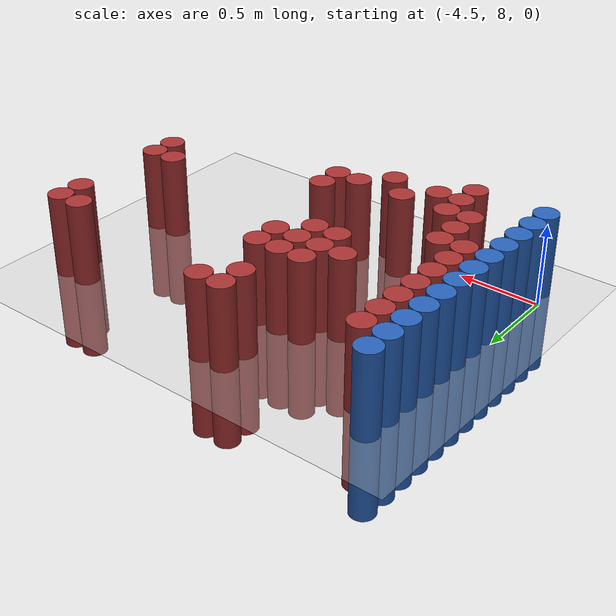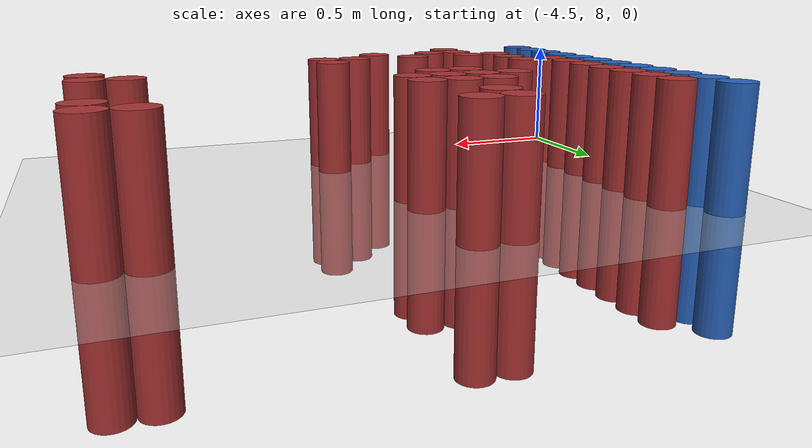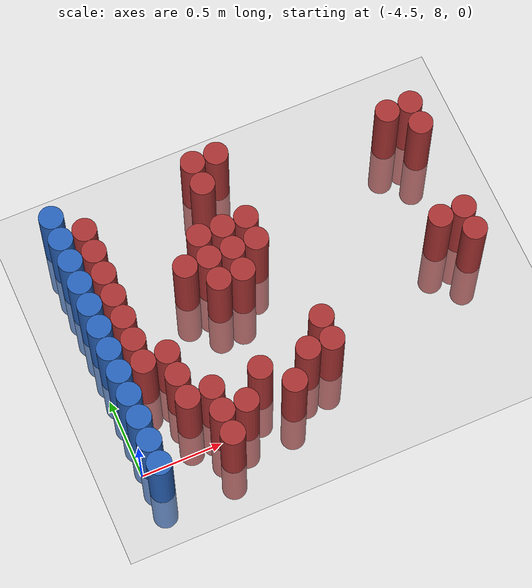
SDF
<sdf version="1.6">
 <world name="default">
  <model name="ground_plane">
   <static>1</static>
   <link name="link">
    <collision name="collision">
     <geometry><plane><normal>0 0 1</normal><size>100 100</size></plane></geometry>
     <surface><friction><ode><mu>100</mu><mu2>50</mu2></ode></friction></surface>
    </collision>
    <visual name="visual">
     <cast_shadows>0</cast_shadows>
     <geometry><plane><normal>0 0 1</normal><size>100 100</size></plane></geometry>
     <material>
      <script><uri>file://media/materials/scripts/gazebo.material</uri><name>Gazebo/Grey</name></script>
     </material>
    </visual>
   </link>
  </model>
  <model name="unit_cylinder_114">
   <static>1</static>
   <pose>-4.425000 7.875000 0.000000 0.000000 0.000000 0.000000</pose>
   <link name="link">
    <inertial>
     <mass>1</mass>
     <inertia><ixx>0.145833</ixx><ixy>0</ixy><ixz>0</ixz><iyy>0.145833</iyy><iyz>0</iyz><izz>0.125</izz></inertia>
    </inertial>
    <collision name="collision">
     <geometry><cylinder><radius>0.075000</radius><length>1</length></cylinder></geometry>
    </collision>
    <visual name="visual">
     <geometry><cylinder><radius>0.075000</radius><length>1</length></cylinder></geometry>
     <material>
      <ambient>0.152000 0.379000 0.720000 1</ambient>
      <diffuse>0.152000 0.379000 0.720000 1</diffuse>
     </material>
     <material>
      <script><name>Gazebo/Grey</name><uri>file://media/materials/scripts/gazebo.material</uri></script>
     </material>
    </visual>
   </link>
  </model>
  <model name="unit_cylinder_115">
   <static>1</static>
   <pose>-4.425000 8.025000 0.000000 0.000000 0.000000 0.000000</pose>
   <link name="link">
    <inertial>
     <mass>1</mass>
     <inertia><ixx>0.145833</ixx><ixy>0</ixy><ixz>0</ixz><iyy>0.145833</iyy><iyz>0</iyz><izz>0.125</izz></inertia>
    </inertial>
    <collision name="collision">
     <geometry><cylinder><radius>0.075000</radius><length>1</length></cylinder></geometry>
    </collision>
    <visual name="visual">
     <geometry><cylinder><radius>0.075000</radius><length>1</length></cylinder></geometry>
     <material>
      <ambient>0.152000 0.379000 0.720000 1</ambient>
      <diffuse>0.152000 0.379000 0.720000 1</diffuse>
     </material>
     <material>
      <script><name>Gazebo/Grey</name><uri>file://media/materials/scripts/gazebo.material</uri></script>
     </material>
    </visual>
   </link>
  </model>
  <model name="unit_cylinder_116">
   <static>1</static>
   <pose>-4.425000 8.175000 0.000000 0.000000 0.000000 0.000000</pose>
   <link name="link">
    <inertial>
     <mass>1</mass>
     <inertia><ixx>0.145833</ixx><ixy>0</ixy><ixz>0</ixz><iyy>0.145833</iyy><iyz>0</iyz><izz>0.125</izz></inertia>
    </inertial>
    <collision name="collision">
     <geometry><cylinder><radius>0.075000</radius><length>1</length></cylinder></geometry>
    </collision>
    <visual name="visual">
     <geometry><cylinder><radius>0.075000</radius><length>1</length></cylinder></geometry>
     <material>
      <ambient>0.152000 0.379000 0.720000 1</ambient>
      <diffuse>0.152000 0.379000 0.720000 1</diffuse>
     </material>
     <material>
      <script><name>Gazebo/Grey</name><uri>file://media/materials/scripts/gazebo.material</uri></script>
     </material>
    </visual>
   </link>
  </model>
  <model name="unit_cylinder_117">
   <static>1</static>
   <pose>-4.425000 8.325000 0.000000 0.000000 0.000000 0.000000</pose>
   <link name="link">
    <inertial>
     <mass>1</mass>
     <inertia><ixx>0.145833</ixx><ixy>0</ixy><ixz>0</ixz><iyy>0.145833</iyy><iyz>0</iyz><izz>0.125</izz></inertia>
    </inertial>
    <collision name="collision">
     <geometry><cylinder><radius>0.075000</radius><length>1</length></cylinder></geometry>
    </collision>
    <visual name="visual">
     <geometry><cylinder><radius>0.075000</radius><length>1</length></cylinder></geometry>
     <material>
      <ambient>0.152000 0.379000 0.720000 1</ambient>
      <diffuse>0.152000 0.379000 0.720000 1</diffuse>
     </material>
     <material>
      <script><name>Gazebo/Grey</name><uri>file://media/materials/scripts/gazebo.material</uri></script>
     </material>
    </visual>
   </link>
  </model>
  <model name="unit_cylinder_118">
   <static>1</static>
   <pose>-4.425000 8.475000 0.000000 0.000000 0.000000 0.000000</pose>
   <link name="link">
    <inertial>
     <mass>1</mass>
     <inertia><ixx>0.145833</ixx><ixy>0</ixy><ixz>0</ixz><iyy>0.145833</iyy><iyz>0</iyz><izz>0.125</izz></inertia>
    </inertial>
    <collision name="collision">
     <geometry><cylinder><radius>0.075000</radius><length>1</length></cylinder></geometry>
    </collision>
    <visual name="visual">
     <geometry><cylinder><radius>0.075000</radius><length>1</length></cylinder></geometry>
     <material>
      <ambient>0.152000 0.379000 0.720000 1</ambient>
      <diffuse>0.152000 0.379000 0.720000 1</diffuse>
     </material>
     <material>
      <script><name>Gazebo/Grey</name><uri>file://media/materials/scripts/gazebo.material</uri></script>
     </material>
    </visual>
   </link>
  </model>
  <model name="unit_cylinder_119">
   <static>1</static>
   <pose>-4.425000 8.625000 0.000000 0.000000 0.000000 0.000000</pose>
   <link name="link">
    <inertial>
     <mass>1</mass>
     <inertia><ixx>0.145833</ixx><ixy>0</ixy><ixz>0</ixz><iyy>0.145833</iyy><iyz>0</iyz><izz>0.125</izz></inertia>
    </inertial>
    <collision name="collision">
     <geometry><cylinder><radius>0.075000</radius><length>1</length></cylinder></geometry>
    </collision>
    <visual name="visual">
     <geometry><cylinder><radius>0.075000</radius><length>1</length></cylinder></geometry>
     <material>
      <ambient>0.152000 0.379000 0.720000 1</ambient>
      <diffuse>0.152000 0.379000 0.720000 1</diffuse>
     </material>
     <material>
      <script><name>Gazebo/Grey</name><uri>file://media/materials/scripts/gazebo.material</uri></script>
     </material>
    </visual>
   </link>
  </model>
  <model name="unit_cylinder_120">
   <static>1</static>
   <pose>-4.425000 8.775000 0.000000 0.000000 0.000000 0.000000</pose>
   <link name="link">
    <inertial>
     <mass>1</mass>
     <inertia><ixx>0.145833</ixx><ixy>0</ixy><ixz>0</ixz><iyy>0.145833</iyy><iyz>0</iyz><izz>0.125</izz></inertia>
    </inertial>
    <collision name="collision">
     <geometry><cylinder><radius>0.075000</radius><length>1</length></cylinder></geometry>
    </collision>
    <visual name="visual">
     <geometry><cylinder><radius>0.075000</radius><length>1</length></cylinder></geometry>
     <material>
      <ambient>0.152000 0.379000 0.720000 1</ambient>
      <diffuse>0.152000 0.379000 0.720000 1</diffuse>
     </material>
     <material>
      <script><name>Gazebo/Grey</name><uri>file://media/materials/scripts/gazebo.material</uri></script>
     </material>
    </visual>
   </link>
  </model>
  <model name="unit_cylinder_121">
   <static>1</static>
   <pose>-4.425000 8.925000 0.000000 0.000000 0.000000 0.000000</pose>
   <link name="link">
    <inertial>
     <mass>1</mass>
     <inertia><ixx>0.145833</ixx><ixy>0</ixy><ixz>0</ixz><iyy>0.145833</iyy><iyz>0</iyz><izz>0.125</izz></inertia>
    </inertial>
    <collision name="collision">
     <geometry><cylinder><radius>0.075000</radius><length>1</length></cylinder></geometry>
    </collision>
    <visual name="visual">
     <geometry><cylinder><radius>0.075000</radius><length>1</length></cylinder></geometry>
     <material>
      <ambient>0.152000 0.379000 0.720000 1</ambient>
      <diffuse>0.152000 0.379000 0.720000 1</diffuse>
     </material>
     <material>
      <script><name>Gazebo/Grey</name><uri>file://media/materials/scripts/gazebo.material</uri></script>
     </material>
    </visual>
   </link>
  </model>
  <model name="unit_cylinder_122">
   <static>1</static>
   <pose>-4.425000 9.075000 0.000000 0.000000 0.000000 0.000000</pose>
   <link name="link">
    <inertial>
     <mass>1</mass>
     <inertia><ixx>0.145833</ixx><ixy>0</ixy><ixz>0</ixz><iyy>0.145833</iyy><iyz>0</iyz><izz>0.125</izz></inertia>
    </inertial>
    <collision name="collision">
     <geometry><cylinder><radius>0.075000</radius><length>1</length></cylinder></geometry>
    </collision>
    <visual name="visual">
     <geometry><cylinder><radius>0.075000</radius><length>1</length></cylinder></geometry>
     <material>
      <ambient>0.152000 0.379000 0.720000 1</ambient>
      <diffuse>0.152000 0.379000 0.720000 1</diffuse>
     </material>
     <material>
      <script><name>Gazebo/Grey</name><uri>file://media/materials/scripts/gazebo.material</uri></script>
     </material>
    </visual>
   </link>
  </model>
  <model name="unit_cylinder_123">
   <static>1</static>
   <pose>-4.425000 9.225000 0.000000 0.000000 0.000000 0.000000</pose>
   <link name="link">
    <inertial>
     <mass>1</mass>
     <inertia><ixx>0.145833</ixx><ixy>0</ixy><ixz>0</ixz><iyy>0.145833</iyy><iyz>0</iyz><izz>0.125</izz></inertia>
    </inertial>
    <collision name="collision">
     <geometry><cylinder><radius>0.075000</radius><length>1</length></cylinder></geometry>
    </collision>
    <visual name="visual">
     <geometry><cylinder><radius>0.075000</radius><length>1</length></cylinder></geometry>
     <material>
      <ambient>0.152000 0.379000 0.720000 1</ambient>
      <diffuse>0.152000 0.379000 0.720000 1</diffuse>
     </material>
     <material>
      <script><name>Gazebo/Grey</name><uri>file://media/materials/scripts/gazebo.material</uri></script>
     </material>
    </visual>
   </link>
  </model>
  <model name="unit_cylinder_124">
   <static>1</static>
   <pose>-4.425000 9.375000 0.000000 0.000000 0.000000 0.000000</pose>
   <link name="link">
    <inertial>
     <mass>1</mass>
     <inertia><ixx>0.145833</ixx><ixy>0</ixy><ixz>0</ixz><iyy>0.145833</iyy><iyz>0</iyz><izz>0.125</izz></inertia>
    </inertial>
    <collision name="collision">
     <geometry><cylinder><radius>0.075000</radius><length>1</length></cylinder></geometry>
    </collision>
    <visual name="visual">
     <geometry><cylinder><radius>0.075000</radius><length>1</length></cylinder></geometry>
     <material>
      <ambient>0.152000 0.379000 0.720000 1</ambient>
      <diffuse>0.152000 0.379000 0.720000 1</diffuse>
     </material>
     <material>
      <script><name>Gazebo/Grey</name><uri>file://media/materials/scripts/gazebo.material</uri></script>
     </material>
    </visual>
   </link>
  </model>
  <model name="unit_cylinder_125">
   <static>1</static>
   <pose>-4.425000 9.525000 0.000000 0.000000 0.000000 0.000000</pose>
   <link name="link">
    <inertial>
     <mass>1</mass>
     <inertia><ixx>0.145833</ixx><ixy>0</ixy><ixz>0</ixz><iyy>0.145833</iyy><iyz>0</iyz><izz>0.125</izz></inertia>
    </inertial>
    <collision name="collision">
     <geometry><cylinder><radius>0.075000</radius><length>1</length></cylinder></geometry>
    </collision>
    <visual name="visual">
     <geometry><cylinder><radius>0.075000</radius><length>1</length></cylinder></geometry>
     <material>
      <ambient>0.152000 0.379000 0.720000 1</ambient>
      <diffuse>0.152000 0.379000 0.720000 1</diffuse>
     </material>
     <material>
      <script><name>Gazebo/Grey</name><uri>file://media/materials/scripts/gazebo.material</uri></script>
     </material>
    </visual>
   </link>
  </model>
  <model name="unit_cylinder_134">
   <static>1</static>
   <pose>-4.275000 8.475000 0.000000 0.000000 0.000000 0.000000</pose>
   <link name="link">
    <inertial>
     <mass>1</mass>
     <inertia><ixx>0.145833</ixx><ixy>0</ixy><ixz>0</ixz><iyy>0.145833</iyy><iyz>0</iyz><izz>0.125</izz></inertia>
    </inertial>
    <collision name="collision">
     <geometry><cylinder><radius>0.075000</radius><length>1</length></cylinder></geometry>
    </collision>
    <visual name="visual">
     <geometry><cylinder><radius>0.075000</radius><length>1</length></cylinder></geometry>
     <material>
      <ambient>0.648000 0.192000 0.192000 1</ambient>
      <diffuse>0.648000 0.192000 0.192000 1</diffuse>
     </material>
     <material>
      <script><name>Gazebo/Grey</name><uri>file://media/materials/scripts/gazebo.material</uri></script>
     </material>
    </visual>
   </link>
  </model>
  <model name="unit_cylinder_135">
   <static>1</static>
   <pose>-4.275000 8.625000 0.000000 0.000000 0.000000 0.000000</pose>
   <link name="link">
    <inertial>
     <mass>1</mass>
     <inertia><ixx>0.145833</ixx><ixy>0</ixy><ixz>0</ixz><iyy>0.145833</iyy><iyz>0</iyz><izz>0.125</izz></inertia>
    </inertial>
    <collision name="collision">
     <geometry><cylinder><radius>0.075000</radius><length>1</length></cylinder></geometry>
    </collision>
    <visual name="visual">
     <geometry><cylinder><radius>0.075000</radius><length>1</length></cylinder></geometry>
     <material>
      <ambient>0.648000 0.192000 0.192000 1</ambient>
      <diffuse>0.648000 0.192000 0.192000 1</diffuse>
     </material>
     <material>
      <script><name>Gazebo/Grey</name><uri>file://media/materials/scripts/gazebo.material</uri></script>
     </material>
    </visual>
   </link>
  </model>
  <model name="unit_cylinder_136">
   <static>1</static>
   <pose>-4.275000 8.775000 0.000000 0.000000 0.000000 0.000000</pose>
   <link name="link">
    <inertial>
     <mass>1</mass>
     <inertia><ixx>0.145833</ixx><ixy>0</ixy><ixz>0</ixz><iyy>0.145833</iyy><iyz>0</iyz><izz>0.125</izz></inertia>
    </inertial>
    <collision name="collision">
     <geometry><cylinder><radius>0.075000</radius><length>1</length></cylinder></geometry>
    </collision>
    <visual name="visual">
     <geometry><cylinder><radius>0.075000</radius><length>1</length></cylinder></geometry>
     <material>
      <ambient>0.648000 0.192000 0.192000 1</ambient>
      <diffuse>0.648000 0.192000 0.192000 1</diffuse>
     </material>
     <material>
      <script><name>Gazebo/Grey</name><uri>file://media/materials/scripts/gazebo.material</uri></script>
     </material>
    </visual>
   </link>
  </model>
  <model name="unit_cylinder_137">
   <static>1</static>
   <pose>-4.275000 8.925000 0.000000 0.000000 0.000000 0.000000</pose>
   <link name="link">
    <inertial>
     <mass>1</mass>
     <inertia><ixx>0.145833</ixx><ixy>0</ixy><ixz>0</ixz><iyy>0.145833</iyy><iyz>0</iyz><izz>0.125</izz></inertia>
    </inertial>
    <collision name="collision">
     <geometry><cylinder><radius>0.075000</radius><length>1</length></cylinder></geometry>
    </collision>
    <visual name="visual">
     <geometry><cylinder><radius>0.075000</radius><length>1</length></cylinder></geometry>
     <material>
      <ambient>0.648000 0.192000 0.192000 1</ambient>
      <diffuse>0.648000 0.192000 0.192000 1</diffuse>
     </material>
     <material>
      <script><name>Gazebo/Grey</name><uri>file://media/materials/scripts/gazebo.material</uri></script>
     </material>
    </visual>
   </link>
  </model>
  <model name="unit_cylinder_138">
   <static>1</static>
   <pose>-4.275000 9.075000 0.000000 0.000000 0.000000 0.000000</pose>
   <link name="link">
    <inertial>
     <mass>1</mass>
     <inertia><ixx>0.145833</ixx><ixy>0</ixy><ixz>0</ixz><iyy>0.145833</iyy><iyz>0</iyz><izz>0.125</izz></inertia>
    </inertial>
    <collision name="collision">
     <geometry><cylinder><radius>0.075000</radius><length>1</length></cylinder></geometry>
    </collision>
    <visual name="visual">
     <geometry><cylinder><radius>0.075000</radius><length>1</length></cylinder></geometry>
     <material>
      <ambient>0.648000 0.192000 0.192000 1</ambient>
      <diffuse>0.648000 0.192000 0.192000 1</diffuse>
     </material>
     <material>
      <script><name>Gazebo/Grey</name><uri>file://media/materials/scripts/gazebo.material</uri></script>
     </material>
    </visual>
   </link>
  </model>
  <model name="unit_cylinder_139">
   <static>1</static>
   <pose>-4.275000 9.225000 0.000000 0.000000 0.000000 0.000000</pose>
   <link name="link">
    <inertial>
     <mass>1</mass>
     <inertia><ixx>0.145833</ixx><ixy>0</ixy><ixz>0</ixz><iyy>0.145833</iyy><iyz>0</iyz><izz>0.125</izz></inertia>
    </inertial>
    <collision name="collision">
     <geometry><cylinder><radius>0.075000</radius><length>1</length></cylinder></geometry>
    </collision>
    <visual name="visual">
     <geometry><cylinder><radius>0.075000</radius><length>1</length></cylinder></geometry>
     <material>
      <ambient>0.648000 0.192000 0.192000 1</ambient>
      <diffuse>0.648000 0.192000 0.192000 1</diffuse>
     </material>
     <material>
      <script><name>Gazebo/Grey</name><uri>file://media/materials/scripts/gazebo.material</uri></script>
     </material>
    </visual>
   </link>
  </model>
  <model name="unit_cylinder_140">
   <static>1</static>
   <pose>-4.275000 9.375000 0.000000 0.000000 0.000000 0.000000</pose>
   <link name="link">
    <inertial>
     <mass>1</mass>
     <inertia><ixx>0.145833</ixx><ixy>0</ixy><ixz>0</ixz><iyy>0.145833</iyy><iyz>0</iyz><izz>0.125</izz></inertia>
    </inertial>
    <collision name="collision">
     <geometry><cylinder><radius>0.075000</radius><length>1</length></cylinder></geometry>
    </collision>
    <visual name="visual">
     <geometry><cylinder><radius>0.075000</radius><length>1</length></cylinder></geometry>
     <material>
      <ambient>0.648000 0.192000 0.192000 1</ambient>
      <diffuse>0.648000 0.192000 0.192000 1</diffuse>
     </material>
     <material>
      <script><name>Gazebo/Grey</name><uri>file://media/materials/scripts/gazebo.material</uri></script>
     </material>
    </visual>
   </link>
  </model>
  <model name="unit_cylinder_148">
   <static>1</static>
   <pose>-4.125000 8.175000 0.000000 0.000000 0.000000 0.000000</pose>
   <link name="link">
    <inertial>
     <mass>1</mass>
     <inertia><ixx>0.145833</ixx><ixy>0</ixy><ixz>0</ixz><iyy>0.145833</iyy><iyz>0</iyz><izz>0.125</izz></inertia>
    </inertial>
    <collision name="collision">
     <geometry><cylinder><radius>0.075000</radius><length>1</length></cylinder></geometry>
    </collision>
    <visual name="visual">
     <geometry><cylinder><radius>0.075000</radius><length>1</length></cylinder></geometry>
     <material>
      <ambient>0.648000 0.192000 0.192000 1</ambient>
      <diffuse>0.648000 0.192000 0.192000 1</diffuse>
     </material>
     <material>
      <script><name>Gazebo/Grey</name><uri>file://media/materials/scripts/gazebo.material</uri></script>
     </material>
    </visual>
   </link>
  </model>
  <model name="unit_cylinder_149">
   <static>1</static>
   <pose>-4.125000 8.325000 0.000000 0.000000 0.000000 0.000000</pose>
   <link name="link">
    <inertial>
     <mass>1</mass>
     <inertia><ixx>0.145833</ixx><ixy>0</ixy><ixz>0</ixz><iyy>0.145833</iyy><iyz>0</iyz><izz>0.125</izz></inertia>
    </inertial>
    <collision name="collision">
     <geometry><cylinder><radius>0.075000</radius><length>1</length></cylinder></geometry>
    </collision>
    <visual name="visual">
     <geometry><cylinder><radius>0.075000</radius><length>1</length></cylinder></geometry>
     <material>
      <ambient>0.648000 0.192000 0.192000 1</ambient>
      <diffuse>0.648000 0.192000 0.192000 1</diffuse>
     </material>
     <material>
      <script><name>Gazebo/Grey</name><uri>file://media/materials/scripts/gazebo.material</uri></script>
     </material>
    </visual>
   </link>
  </model>
  <model name="unit_cylinder_150">
   <static>1</static>
   <pose>-4.125000 8.475000 0.000000 0.000000 0.000000 0.000000</pose>
   <link name="link">
    <inertial>
     <mass>1</mass>
     <inertia><ixx>0.145833</ixx><ixy>0</ixy><ixz>0</ixz><iyy>0.145833</iyy><iyz>0</iyz><izz>0.125</izz></inertia>
    </inertial>
    <collision name="collision">
     <geometry><cylinder><radius>0.075000</radius><length>1</length></cylinder></geometry>
    </collision>
    <visual name="visual">
     <geometry><cylinder><radius>0.075000</radius><length>1</length></cylinder></geometry>
     <material>
      <ambient>0.648000 0.192000 0.192000 1</ambient>
      <diffuse>0.648000 0.192000 0.192000 1</diffuse>
     </material>
     <material>
      <script><name>Gazebo/Grey</name><uri>file://media/materials/scripts/gazebo.material</uri></script>
     </material>
    </visual>
   </link>
  </model>
  <model name="unit_cylinder_160">
   <static>1</static>
   <pose>-3.975000 7.875000 0.000000 0.000000 0.000000 0.000000</pose>
   <link name="link">
    <inertial>
     <mass>1</mass>
     <inertia><ixx>0.145833</ixx><ixy>0</ixy><ixz>0</ixz><iyy>0.145833</iyy><iyz>0</iyz><izz>0.125</izz></inertia>
    </inertial>
    <collision name="collision">
     <geometry><cylinder><radius>0.075000</radius><length>1</length></cylinder></geometry>
    </collision>
    <visual name="visual">
     <geometry><cylinder><radius>0.075000</radius><length>1</length></cylinder></geometry>
     <material>
      <ambient>0.648000 0.192000 0.192000 1</ambient>
      <diffuse>0.648000 0.192000 0.192000 1</diffuse>
     </material>
     <material>
      <script><name>Gazebo/Grey</name><uri>file://media/materials/scripts/gazebo.material</uri></script>
     </material>
    </visual>
   </link>
  </model>
  <model name="unit_cylinder_161">
   <static>1</static>
   <pose>-3.975000 8.025000 0.000000 0.000000 0.000000 0.000000</pose>
   <link name="link">
    <inertial>
     <mass>1</mass>
     <inertia><ixx>0.145833</ixx><ixy>0</ixy><ixz>0</ixz><iyy>0.145833</iyy><iyz>0</iyz><izz>0.125</izz></inertia>
    </inertial>
    <collision name="collision">
     <geometry><cylinder><radius>0.075000</radius><length>1</length></cylinder></geometry>
    </collision>
    <visual name="visual">
     <geometry><cylinder><radius>0.075000</radius><length>1</length></cylinder></geometry>
     <material>
      <ambient>0.648000 0.192000 0.192000 1</ambient>
      <diffuse>0.648000 0.192000 0.192000 1</diffuse>
     </material>
     <material>
      <script><name>Gazebo/Grey</name><uri>file://media/materials/scripts/gazebo.material</uri></script>
     </material>
    </visual>
   </link>
  </model>
  <model name="unit_cylinder_162">
   <static>1</static>
   <pose>-3.975000 8.175000 0.000000 0.000000 0.000000 0.000000</pose>
   <link name="link">
    <inertial>
     <mass>1</mass>
     <inertia><ixx>0.145833</ixx><ixy>0</ixy><ixz>0</ixz><iyy>0.145833</iyy><iyz>0</iyz><izz>0.125</izz></inertia>
    </inertial>
    <collision name="collision">
     <geometry><cylinder><radius>0.075000</radius><length>1</length></cylinder></geometry>
    </collision>
    <visual name="visual">
     <geometry><cylinder><radius>0.075000</radius><length>1</length></cylinder></geometry>
     <material>
      <ambient>0.648000 0.192000 0.192000 1</ambient>
      <diffuse>0.648000 0.192000 0.192000 1</diffuse>
     </material>
     <material>
      <script><name>Gazebo/Grey</name><uri>file://media/materials/scripts/gazebo.material</uri></script>
     </material>
    </visual>
   </link>
  </model>
  <model name="unit_cylinder_169">
   <static>1</static>
   <pose>-3.825000 8.025000 0.000000 0.000000 0.000000 0.000000</pose>
   <link name="link">
    <inertial>
     <mass>1</mass>
     <inertia><ixx>0.145833</ixx><ixy>0</ixy><ixz>0</ixz><iyy>0.145833</iyy><iyz>0</iyz><izz>0.125</izz></inertia>
    </inertial>
    <collision name="collision">
     <geometry><cylinder><radius>0.075000</radius><length>1</length></cylinder></geometry>
    </collision>
    <visual name="visual">
     <geometry><cylinder><radius>0.075000</radius><length>1</length></cylinder></geometry>
     <material>
      <ambient>0.648000 0.192000 0.192000 1</ambient>
      <diffuse>0.648000 0.192000 0.192000 1</diffuse>
     </material>
     <material>
      <script><name>Gazebo/Grey</name><uri>file://media/materials/scripts/gazebo.material</uri></script>
     </material>
    </visual>
   </link>
  </model>
  <model name="unit_cylinder_170">
   <static>1</static>
   <pose>-3.825000 8.925000 0.000000 0.000000 0.000000 0.000000</pose>
   <link name="link">
    <inertial>
     <mass>1</mass>
     <inertia><ixx>0.145833</ixx><ixy>0</ixy><ixz>0</ixz><iyy>0.145833</iyy><iyz>0</iyz><izz>0.125</izz></inertia>
    </inertial>
    <collision name="collision">
     <geometry><cylinder><radius>0.075000</radius><length>1</length></cylinder></geometry>
    </collision>
    <visual name="visual">
     <geometry><cylinder><radius>0.075000</radius><length>1</length></cylinder></geometry>
     <material>
      <ambient>0.648000 0.192000 0.192000 1</ambient>
      <diffuse>0.648000 0.192000 0.192000 1</diffuse>
     </material>
     <material>
      <script><name>Gazebo/Grey</name><uri>file://media/materials/scripts/gazebo.material</uri></script>
     </material>
    </visual>
   </link>
  </model>
  <model name="unit_cylinder_172">
   <static>1</static>
   <pose>-3.675000 8.175000 0.000000 0.000000 0.000000 0.000000</pose>
   <link name="link">
    <inertial>
     <mass>1</mass>
     <inertia><ixx>0.145833</ixx><ixy>0</ixy><ixz>0</ixz><iyy>0.145833</iyy><iyz>0</iyz><izz>0.125</izz></inertia>
    </inertial>
    <collision name="collision">
     <geometry><cylinder><radius>0.075000</radius><length>1</length></cylinder></geometry>
    </collision>
    <visual name="visual">
     <geometry><cylinder><radius>0.075000</radius><length>1</length></cylinder></geometry>
     <material>
      <ambient>0.648000 0.192000 0.192000 1</ambient>
      <diffuse>0.648000 0.192000 0.192000 1</diffuse>
     </material>
     <material>
      <script><name>Gazebo/Grey</name><uri>file://media/materials/scripts/gazebo.material</uri></script>
     </material>
    </visual>
   </link>
  </model>
  <model name="unit_cylinder_173">
   <static>1</static>
   <pose>-3.675000 8.775000 0.000000 0.000000 0.000000 0.000000</pose>
   <link name="link">
    <inertial>
     <mass>1</mass>
     <inertia><ixx>0.145833</ixx><ixy>0</ixy><ixz>0</ixz><iyy>0.145833</iyy><iyz>0</iyz><izz>0.125</izz></inertia>
    </inertial>
    <collision name="collision">
     <geometry><cylinder><radius>0.075000</radius><length>1</length></cylinder></geometry>
    </collision>
    <visual name="visual">
     <geometry><cylinder><radius>0.075000</radius><length>1</length></cylinder></geometry>
     <material>
      <ambient>0.648000 0.192000 0.192000 1</ambient>
      <diffuse>0.648000 0.192000 0.192000 1</diffuse>
     </material>
     <material>
      <script><name>Gazebo/Grey</name><uri>file://media/materials/scripts/gazebo.material</uri></script>
     </material>
    </visual>
   </link>
  </model>
  <model name="unit_cylinder_174">
   <static>1</static>
   <pose>-3.675000 8.925000 0.000000 0.000000 0.000000 0.000000</pose>
   <link name="link">
    <inertial>
     <mass>1</mass>
     <inertia><ixx>0.145833</ixx><ixy>0</ixy><ixz>0</ixz><iyy>0.145833</iyy><iyz>0</iyz><izz>0.125</izz></inertia>
    </inertial>
    <collision name="collision">
     <geometry><cylinder><radius>0.075000</radius><length>1</length></cylinder></geometry>
    </collision>
    <visual name="visual">
     <geometry><cylinder><radius>0.075000</radius><length>1</length></cylinder></geometry>
     <material>
      <ambient>0.648000 0.192000 0.192000 1</ambient>
      <diffuse>0.648000 0.192000 0.192000 1</diffuse>
     </material>
     <material>
      <script><name>Gazebo/Grey</name><uri>file://media/materials/scripts/gazebo.material</uri></script>
     </material>
    </visual>
   </link>
  </model>
  <model name="unit_cylinder_175">
   <static>1</static>
   <pose>-3.675000 9.075000 0.000000 0.000000 0.000000 0.000000</pose>
   <link name="link">
    <inertial>
     <mass>1</mass>
     <inertia><ixx>0.145833</ixx><ixy>0</ixy><ixz>0</ixz><iyy>0.145833</iyy><iyz>0</iyz><izz>0.125</izz></inertia>
    </inertial>
    <collision name="collision">
     <geometry><cylinder><radius>0.075000</radius><length>1</length></cylinder></geometry>
    </collision>
    <visual name="visual">
     <geometry><cylinder><radius>0.075000</radius><length>1</length></cylinder></geometry>
     <material>
      <ambient>0.648000 0.192000 0.192000 1</ambient>
      <diffuse>0.648000 0.192000 0.192000 1</diffuse>
     </material>
     <material>
      <script><name>Gazebo/Grey</name><uri>file://media/materials/scripts/gazebo.material</uri></script>
     </material>
    </visual>
   </link>
  </model>
  <model name="unit_cylinder_176">
   <static>1</static>
   <pose>-3.525000 8.025000 0.000000 0.000000 0.000000 0.000000</pose>
   <link name="link">
    <inertial>
     <mass>1</mass>
     <inertia><ixx>0.145833</ixx><ixy>0</ixy><ixz>0</ixz><iyy>0.145833</iyy><iyz>0</iyz><izz>0.125</izz></inertia>
    </inertial>
    <collision name="collision">
     <geometry><cylinder><radius>0.075000</radius><length>1</length></cylinder></geometry>
    </collision>
    <visual name="visual">
     <geometry><cylinder><radius>0.075000</radius><length>1</length></cylinder></geometry>
     <material>
      <ambient>0.648000 0.192000 0.192000 1</ambient>
      <diffuse>0.648000 0.192000 0.192000 1</diffuse>
     </material>
     <material>
      <script><name>Gazebo/Grey</name><uri>file://media/materials/scripts/gazebo.material</uri></script>
     </material>
    </visual>
   </link>
  </model>
  <model name="unit_cylinder_177">
   <static>1</static>
   <pose>-3.525000 8.775000 0.000000 0.000000 0.000000 0.000000</pose>
   <link name="link">
    <inertial>
     <mass>1</mass>
     <inertia><ixx>0.145833</ixx><ixy>0</ixy><ixz>0</ixz><iyy>0.145833</iyy><iyz>0</iyz><izz>0.125</izz></inertia>
    </inertial>
    <collision name="collision">
     <geometry><cylinder><radius>0.075000</radius><length>1</length></cylinder></geometry>
    </collision>
    <visual name="visual">
     <geometry><cylinder><radius>0.075000</radius><length>1</length></cylinder></geometry>
     <material>
      <ambient>0.648000 0.192000 0.192000 1</ambient>
      <diffuse>0.648000 0.192000 0.192000 1</diffuse>
     </material>
     <material>
      <script><name>Gazebo/Grey</name><uri>file://media/materials/scripts/gazebo.material</uri></script>
     </material>
    </visual>
   </link>
  </model>
  <model name="unit_cylinder_178">
   <static>1</static>
   <pose>-3.525000 8.925000 0.000000 0.000000 0.000000 0.000000</pose>
   <link name="link">
    <inertial>
     <mass>1</mass>
     <inertia><ixx>0.145833</ixx><ixy>0</ixy><ixz>0</ixz><iyy>0.145833</iyy><iyz>0</iyz><izz>0.125</izz></inertia>
    </inertial>
    <collision name="collision">
     <geometry><cylinder><radius>0.075000</radius><length>1</length></cylinder></geometry>
    </collision>
    <visual name="visual">
     <geometry><cylinder><radius>0.075000</radius><length>1</length></cylinder></geometry>
     <material>
      <ambient>0.648000 0.192000 0.192000 1</ambient>
      <diffuse>0.648000 0.192000 0.192000 1</diffuse>
     </material>
     <material>
      <script><name>Gazebo/Grey</name><uri>file://media/materials/scripts/gazebo.material</uri></script>
     </material>
    </visual>
   </link>
  </model>
  <model name="unit_cylinder_179">
   <static>1</static>
   <pose>-3.525000 9.075000 0.000000 0.000000 0.000000 0.000000</pose>
   <link name="link">
    <inertial>
     <mass>1</mass>
     <inertia><ixx>0.145833</ixx><ixy>0</ixy><ixz>0</ixz><iyy>0.145833</iyy><iyz>0</iyz><izz>0.125</izz></inertia>
    </inertial>
    <collision name="collision">
     <geometry><cylinder><radius>0.075000</radius><length>1</length></cylinder></geometry>
    </collision>
    <visual name="visual">
     <geometry><cylinder><radius>0.075000</radius><length>1</length></cylinder></geometry>
     <material>
      <ambient>0.648000 0.192000 0.192000 1</ambient>
      <diffuse>0.648000 0.192000 0.192000 1</diffuse>
     </material>
     <material>
      <script><name>Gazebo/Grey</name><uri>file://media/materials/scripts/gazebo.material</uri></script>
     </material>
    </visual>
   </link>
  </model>
  <model name="unit_cylinder_180">
   <static>1</static>
   <pose>-3.525000 9.375000 0.000000 0.000000 0.000000 0.000000</pose>
   <link name="link">
    <inertial>
     <mass>1</mass>
     <inertia><ixx>0.145833</ixx><ixy>0</ixy><ixz>0</ixz><iyy>0.145833</iyy><iyz>0</iyz><izz>0.125</izz></inertia>
    </inertial>
    <collision name="collision">
     <geometry><cylinder><radius>0.075000</radius><length>1</length></cylinder></geometry>
    </collision>
    <visual name="visual">
     <geometry><cylinder><radius>0.075000</radius><length>1</length></cylinder></geometry>
     <material>
      <ambient>0.648000 0.192000 0.192000 1</ambient>
      <diffuse>0.648000 0.192000 0.192000 1</diffuse>
     </material>
     <material>
      <script><name>Gazebo/Grey</name><uri>file://media/materials/scripts/gazebo.material</uri></script>
     </material>
    </visual>
   </link>
  </model>
  <model name="unit_cylinder_181">
   <static>1</static>
   <pose>-3.525000 9.525000 0.000000 0.000000 0.000000 0.000000</pose>
   <link name="link">
    <inertial>
     <mass>1</mass>
     <inertia><ixx>0.145833</ixx><ixy>0</ixy><ixz>0</ixz><iyy>0.145833</iyy><iyz>0</iyz><izz>0.125</izz></inertia>
    </inertial>
    <collision name="collision">
     <geometry><cylinder><radius>0.075000</radius><length>1</length></cylinder></geometry>
    </collision>
    <visual name="visual">
     <geometry><cylinder><radius>0.075000</radius><length>1</length></cylinder></geometry>
     <material>
      <ambient>0.648000 0.192000 0.192000 1</ambient>
      <diffuse>0.648000 0.192000 0.192000 1</diffuse>
     </material>
     <material>
      <script><name>Gazebo/Grey</name><uri>file://media/materials/scripts/gazebo.material</uri></script>
     </material>
    </visual>
   </link>
  </model>
  <model name="unit_cylinder_183">
   <static>1</static>
   <pose>-3.375000 8.175000 0.000000 0.000000 0.000000 0.000000</pose>
   <link name="link">
    <inertial>
     <mass>1</mass>
     <inertia><ixx>0.145833</ixx><ixy>0</ixy><ixz>0</ixz><iyy>0.145833</iyy><iyz>0</iyz><izz>0.125</izz></inertia>
    </inertial>
    <collision name="collision">
     <geometry><cylinder><radius>0.075000</radius><length>1</length></cylinder></geometry>
    </collision>
    <visual name="visual">
     <geometry><cylinder><radius>0.075000</radius><length>1</length></cylinder></geometry>
     <material>
      <ambient>0.648000 0.192000 0.192000 1</ambient>
      <diffuse>0.648000 0.192000 0.192000 1</diffuse>
     </material>
     <material>
      <script><name>Gazebo/Grey</name><uri>file://media/materials/scripts/gazebo.material</uri></script>
     </material>
    </visual>
   </link>
  </model>
  <model name="unit_cylinder_184">
   <static>1</static>
   <pose>-3.375000 8.925000 0.000000 0.000000 0.000000 0.000000</pose>
   <link name="link">
    <inertial>
     <mass>1</mass>
     <inertia><ixx>0.145833</ixx><ixy>0</ixy><ixz>0</ixz><iyy>0.145833</iyy><iyz>0</iyz><izz>0.125</izz></inertia>
    </inertial>
    <collision name="collision">
     <geometry><cylinder><radius>0.075000</radius><length>1</length></cylinder></geometry>
    </collision>
    <visual name="visual">
     <geometry><cylinder><radius>0.075000</radius><length>1</length></cylinder></geometry>
     <material>
      <ambient>0.648000 0.192000 0.192000 1</ambient>
      <diffuse>0.648000 0.192000 0.192000 1</diffuse>
     </material>
     <material>
      <script><name>Gazebo/Grey</name><uri>file://media/materials/scripts/gazebo.material</uri></script>
     </material>
    </visual>
   </link>
  </model>
  <model name="unit_cylinder_185">
   <static>1</static>
   <pose>-3.375000 9.075000 0.000000 0.000000 0.000000 0.000000</pose>
   <link name="link">
    <inertial>
     <mass>1</mass>
     <inertia><ixx>0.145833</ixx><ixy>0</ixy><ixz>0</ixz><iyy>0.145833</iyy><iyz>0</iyz><izz>0.125</izz></inertia>
    </inertial>
    <collision name="collision">
     <geometry><cylinder><radius>0.075000</radius><length>1</length></cylinder></geometry>
    </collision>
    <visual name="visual">
     <geometry><cylinder><radius>0.075000</radius><length>1</length></cylinder></geometry>
     <material>
      <ambient>0.648000 0.192000 0.192000 1</ambient>
      <diffuse>0.648000 0.192000 0.192000 1</diffuse>
     </material>
     <material>
      <script><name>Gazebo/Grey</name><uri>file://media/materials/scripts/gazebo.material</uri></script>
     </material>
    </visual>
   </link>
  </model>
  <model name="unit_cylinder_186">
   <static>1</static>
   <pose>-3.375000 9.525000 0.000000 0.000000 0.000000 0.000000</pose>
   <link name="link">
    <inertial>
     <mass>1</mass>
     <inertia><ixx>0.145833</ixx><ixy>0</ixy><ixz>0</ixz><iyy>0.145833</iyy><iyz>0</iyz><izz>0.125</izz></inertia>
    </inertial>
    <collision name="collision">
     <geometry><cylinder><radius>0.075000</radius><length>1</length></cylinder></geometry>
    </collision>
    <visual name="visual">
     <geometry><cylinder><radius>0.075000</radius><length>1</length></cylinder></geometry>
     <material>
      <ambient>0.648000 0.192000 0.192000 1</ambient>
      <diffuse>0.648000 0.192000 0.192000 1</diffuse>
     </material>
     <material>
      <script><name>Gazebo/Grey</name><uri>file://media/materials/scripts/gazebo.material</uri></script>
     </material>
    </visual>
   </link>
  </model>
  <model name="unit_cylinder_189">
   <static>1</static>
   <pose>-3.225000 8.175000 0.000000 0.000000 0.000000 0.000000</pose>
   <link name="link">
    <inertial>
     <mass>1</mass>
     <inertia><ixx>0.145833</ixx><ixy>0</ixy><ixz>0</ixz><iyy>0.145833</iyy><iyz>0</iyz><izz>0.125</izz></inertia>
    </inertial>
    <collision name="collision">
     <geometry><cylinder><radius>0.075000</radius><length>1</length></cylinder></geometry>
    </collision>
    <visual name="visual">
     <geometry><cylinder><radius>0.075000</radius><length>1</length></cylinder></geometry>
     <material>
      <ambient>0.648000 0.192000 0.192000 1</ambient>
      <diffuse>0.648000 0.192000 0.192000 1</diffuse>
     </material>
     <material>
      <script><name>Gazebo/Grey</name><uri>file://media/materials/scripts/gazebo.material</uri></script>
     </material>
    </visual>
   </link>
  </model>
  <model name="unit_cylinder_190">
   <static>1</static>
   <pose>-3.225000 8.325000 0.000000 0.000000 0.000000 0.000000</pose>
   <link name="link">
    <inertial>
     <mass>1</mass>
     <inertia><ixx>0.145833</ixx><ixy>0</ixy><ixz>0</ixz><iyy>0.145833</iyy><iyz>0</iyz><izz>0.125</izz></inertia>
    </inertial>
    <collision name="collision">
     <geometry><cylinder><radius>0.075000</radius><length>1</length></cylinder></geometry>
    </collision>
    <visual name="visual">
     <geometry><cylinder><radius>0.075000</radius><length>1</length></cylinder></geometry>
     <material>
      <ambient>0.648000 0.192000 0.192000 1</ambient>
      <diffuse>0.648000 0.192000 0.192000 1</diffuse>
     </material>
     <material>
      <script><name>Gazebo/Grey</name><uri>file://media/materials/scripts/gazebo.material</uri></script>
     </material>
    </visual>
   </link>
  </model>
  <model name="unit_cylinder_194">
   <static>1</static>
   <pose>-2.325000 8.625000 0.000000 0.000000 0.000000 0.000000</pose>
   <link name="link">
    <inertial>
     <mass>1</mass>
     <inertia><ixx>0.145833</ixx><ixy>0</ixy><ixz>0</ixz><iyy>0.145833</iyy><iyz>0</iyz><izz>0.125</izz></inertia>
    </inertial>
    <collision name="collision">
     <geometry><cylinder><radius>0.075000</radius><length>1</length></cylinder></geometry>
    </collision>
    <visual name="visual">
     <geometry><cylinder><radius>0.075000</radius><length>1</length></cylinder></geometry>
     <material>
      <ambient>0.648000 0.192000 0.192000 1</ambient>
      <diffuse>0.648000 0.192000 0.192000 1</diffuse>
     </material>
     <material>
      <script><name>Gazebo/Grey</name><uri>file://media/materials/scripts/gazebo.material</uri></script>
     </material>
    </visual>
   </link>
  </model>
  <model name="unit_cylinder_195">
   <static>1</static>
   <pose>-2.325000 9.375000 0.000000 0.000000 0.000000 0.000000</pose>
   <link name="link">
    <inertial>
     <mass>1</mass>
     <inertia><ixx>0.145833</ixx><ixy>0</ixy><ixz>0</ixz><iyy>0.145833</iyy><iyz>0</iyz><izz>0.125</izz></inertia>
    </inertial>
    <collision name="collision">
     <geometry><cylinder><radius>0.075000</radius><length>1</length></cylinder></geometry>
    </collision>
    <visual name="visual">
     <geometry><cylinder><radius>0.075000</radius><length>1</length></cylinder></geometry>
     <material>
      <ambient>0.648000 0.192000 0.192000 1</ambient>
      <diffuse>0.648000 0.192000 0.192000 1</diffuse>
     </material>
     <material>
      <script><name>Gazebo/Grey</name><uri>file://media/materials/scripts/gazebo.material</uri></script>
     </material>
    </visual>
   </link>
  </model>
  <model name="unit_cylinder_202">
   <static>1</static>
   <pose>-2.175000 8.475000 0.000000 0.000000 0.000000 0.000000</pose>
   <link name="link">
    <inertial>
     <mass>1</mass>
     <inertia><ixx>0.145833</ixx><ixy>0</ixy><ixz>0</ixz><iyy>0.145833</iyy><iyz>0</iyz><izz>0.125</izz></inertia>
    </inertial>
    <collision name="collision">
     <geometry><cylinder><radius>0.075000</radius><length>1</length></cylinder></geometry>
    </collision>
    <visual name="visual">
     <geometry><cylinder><radius>0.075000</radius><length>1</length></cylinder></geometry>
     <material>
      <ambient>0.648000 0.192000 0.192000 1</ambient>
      <diffuse>0.648000 0.192000 0.192000 1</diffuse>
     </material>
     <material>
      <script><name>Gazebo/Grey</name><uri>file://media/materials/scripts/gazebo.material</uri></script>
     </material>
    </visual>
   </link>
  </model>
  <model name="unit_cylinder_203">
   <static>1</static>
   <pose>-2.175000 8.625000 0.000000 0.000000 0.000000 0.000000</pose>
   <link name="link">
    <inertial>
     <mass>1</mass>
     <inertia><ixx>0.145833</ixx><ixy>0</ixy><ixz>0</ixz><iyy>0.145833</iyy><iyz>0</iyz><izz>0.125</izz></inertia>
    </inertial>
    <collision name="collision">
     <geometry><cylinder><radius>0.075000</radius><length>1</length></cylinder></geometry>
    </collision>
    <visual name="visual">
     <geometry><cylinder><radius>0.075000</radius><length>1</length></cylinder></geometry>
     <material>
      <ambient>0.648000 0.192000 0.192000 1</ambient>
      <diffuse>0.648000 0.192000 0.192000 1</diffuse>
     </material>
     <material>
      <script><name>Gazebo/Grey</name><uri>file://media/materials/scripts/gazebo.material</uri></script>
     </material>
    </visual>
   </link>
  </model>
  <model name="unit_cylinder_204">
   <static>1</static>
   <pose>-2.175000 9.225000 0.000000 0.000000 0.000000 0.000000</pose>
   <link name="link">
    <inertial>
     <mass>1</mass>
     <inertia><ixx>0.145833</ixx><ixy>0</ixy><ixz>0</ixz><iyy>0.145833</iyy><iyz>0</iyz><izz>0.125</izz></inertia>
    </inertial>
    <collision name="collision">
     <geometry><cylinder><radius>0.075000</radius><length>1</length></cylinder></geometry>
    </collision>
    <visual name="visual">
     <geometry><cylinder><radius>0.075000</radius><length>1</length></cylinder></geometry>
     <material>
      <ambient>0.648000 0.192000 0.192000 1</ambient>
      <diffuse>0.648000 0.192000 0.192000 1</diffuse>
     </material>
     <material>
      <script><name>Gazebo/Grey</name><uri>file://media/materials/scripts/gazebo.material</uri></script>
     </material>
    </visual>
   </link>
  </model>
  <model name="unit_cylinder_205">
   <static>1</static>
   <pose>-2.175000 9.375000 0.000000 0.000000 0.000000 0.000000</pose>
   <link name="link">
    <inertial>
     <mass>1</mass>
     <inertia><ixx>0.145833</ixx><ixy>0</ixy><ixz>0</ixz><iyy>0.145833</iyy><iyz>0</iyz><izz>0.125</izz></inertia>
    </inertial>
    <collision name="collision">
     <geometry><cylinder><radius>0.075000</radius><length>1</length></cylinder></geometry>
    </collision>
    <visual name="visual">
     <geometry><cylinder><radius>0.075000</radius><length>1</length></cylinder></geometry>
     <material>
      <ambient>0.648000 0.192000 0.192000 1</ambient>
      <diffuse>0.648000 0.192000 0.192000 1</diffuse>
     </material>
     <material>
      <script><name>Gazebo/Grey</name><uri>file://media/materials/scripts/gazebo.material</uri></script>
     </material>
    </visual>
   </link>
  </model>
 </world>
</sdf>
